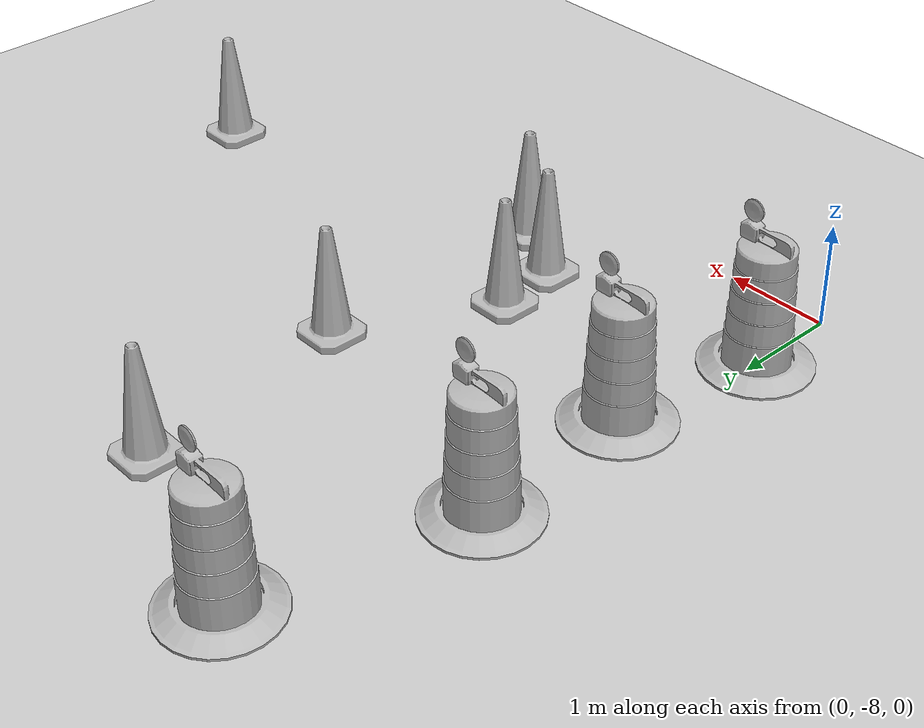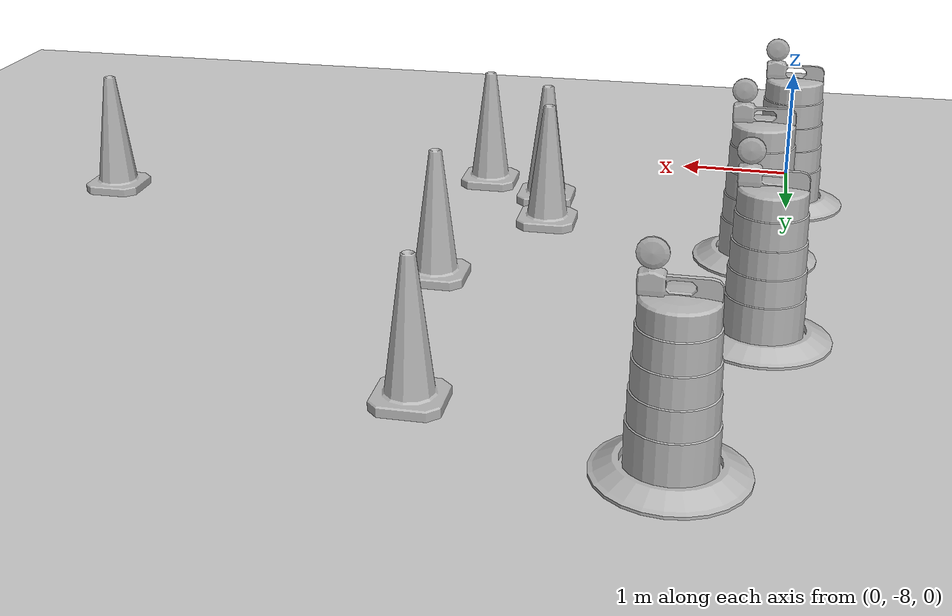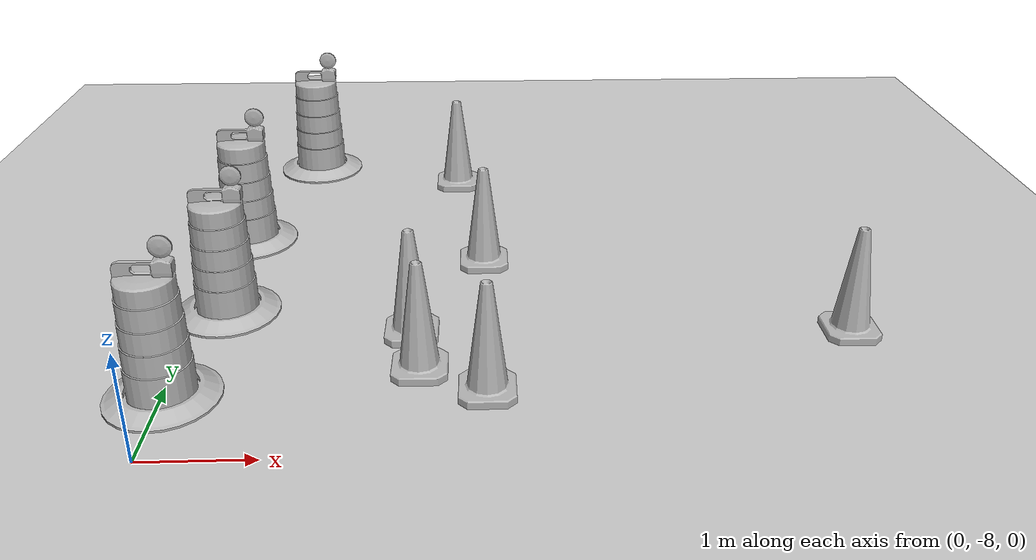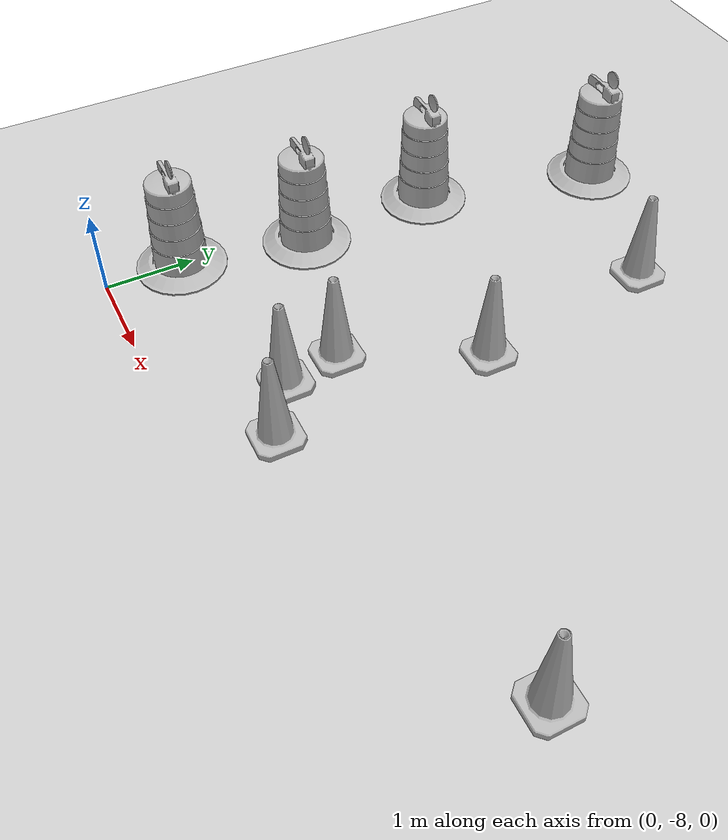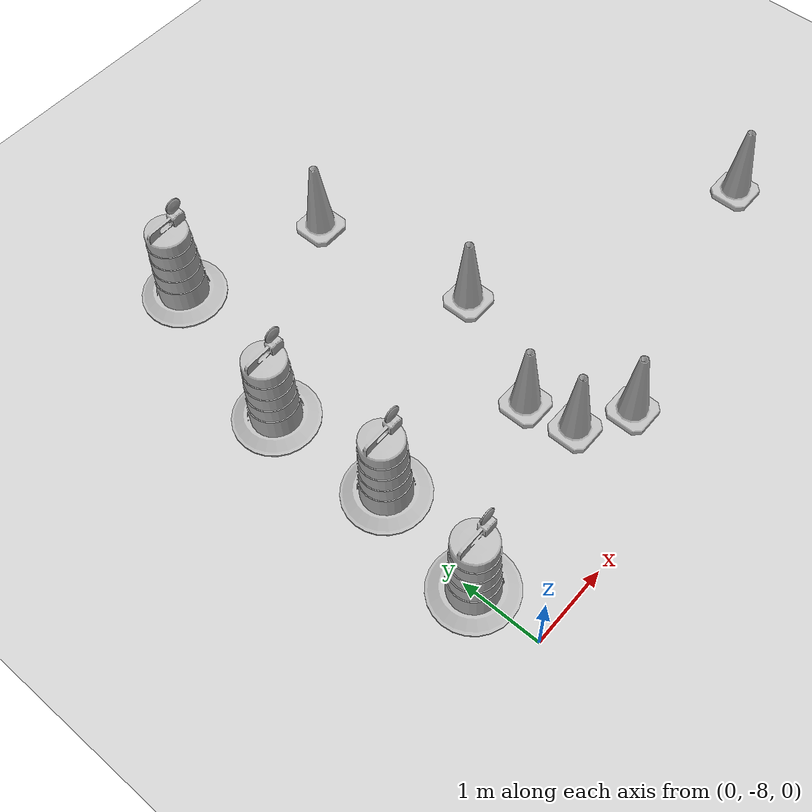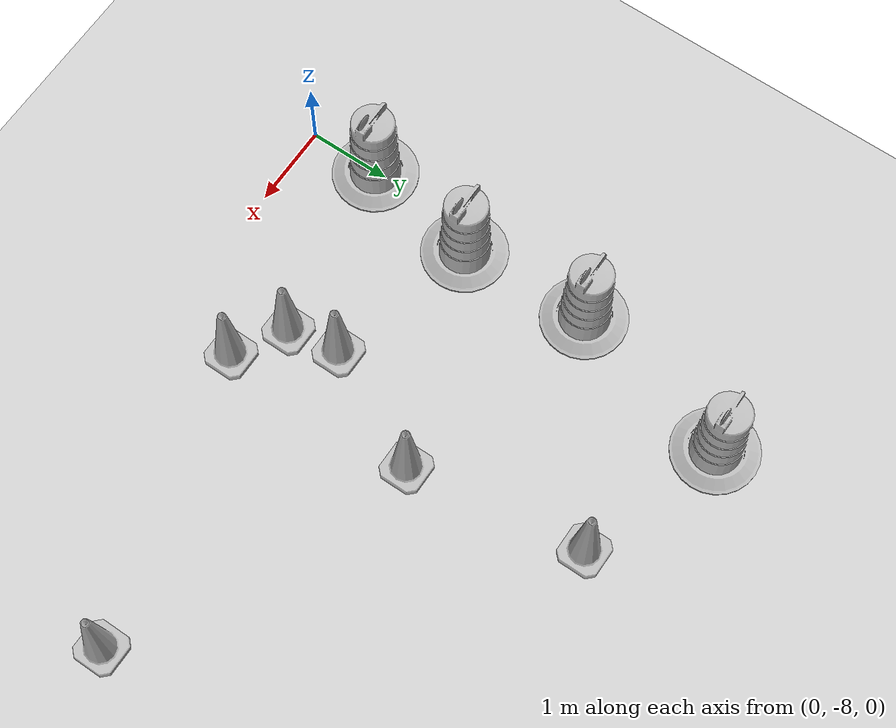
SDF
<sdf version="1.7">
 <world name="default">
  <light name="sun" type="directional">
   <pose>0 0 10 0 -0 0</pose>
   <diffuse>0.8 0.8 0.8 1</diffuse>
   <specular>0.2 0.2 0.2 1</specular>
   <attenuation>
    <range>1000</range>
    <constant>0.9</constant>
    <linear>0.01</linear>
    <quadratic>0.001</quadratic>
   </attenuation>
   <direction>-0.5 0.1 -0.9</direction>
   <spot><inner_angle>0</inner_angle><outer_angle>0</outer_angle><falloff>0</falloff></spot>
  </light>
  <model name="ground_plane">
   <static>1</static>
   <link name="link">
    <collision name="collision">
     <geometry><plane><normal>0 0 1</normal><size>100 100</size></plane></geometry>
     <surface>
      <contact><collide_bitmask>65535</collide_bitmask></contact>
      <friction><ode><mu>100</mu><mu2>50</mu2></ode></friction>
     </surface>
    </collision>
    <visual name="visual">
     <cast_shadows>0</cast_shadows>
     <geometry><plane><normal>0 0 1</normal><size>100 100</size></plane></geometry>
     <material>
      <script><uri>file://media/materials/scripts/gazebo.material</uri><name>Gazebo/Grey</name></script>
     </material>
    </visual>
   </link>
  </model>
  <gravity>0 0 -9.8</gravity>
  <magnetic_field>6e-06 2.3e-05 -4.2e-05</magnetic_field>
  <atmosphere type="adiabatic"/>
  <physics type="ode">
   <max_step_size>0.001</max_step_size>
   <real_time_factor>1</real_time_factor>
   <real_time_update_rate>1000</real_time_update_rate>
  </physics>
  <scene><ambient>0.4 0.4 0.4 1</ambient><background>0.7 0.7 0.7 1</background><shadows>1</shadows></scene>
  <audio><device>default</device></audio>
  <spherical_coordinates>
   <surface_model>EARTH_WGS84</surface_model>
   <latitude_deg>0</latitude_deg>
   <longitude_deg>0</longitude_deg>
   <elevation>0</elevation>
   <heading_deg>0</heading_deg>
  </spherical_coordinates>
  <model name="Construction Barrel">
   <link name="link">
    <inertial>
     <pose>0 0 0.4 0 -0 0</pose>
     <mass>500</mass>
     <inertia><ixx>51.2096</ixx><iyy>51.2096</iyy><izz>25</izz><ixy>0</ixy><ixz>0</ixz><iyz>0</iyz></inertia>
    </inertial>
    <collision name="collision">
     <geometry><mesh><uri>model://construction_barrel/meshes/construction_barrel.dae</uri></mesh></geometry>
    </collision>
    <visual name="visual">
     <geometry><mesh><uri>model://construction_barrel/meshes/construction_barrel.dae</uri></mesh></geometry>
    </visual>
   </link>
   <pose>0.703286 -2.08719 1e-06 4e-06 2e-06 -1.9e-05</pose>
  </model>
  <model name="Construction Cone">
   <link name="link">
    <collision name="collision">
     <geometry>
      <mesh><scale>10 10 10</scale><uri>model://construction_cone/meshes/construction_cone.dae</uri></mesh>
     </geometry>
    </collision>
    <visual name="visual">
     <geometry>
      <mesh><scale>10 10 10</scale><uri>model://construction_cone/meshes/construction_cone.dae</uri></mesh>
     </geometry>
    </visual>
    <inertial>
     <inertia><ixx>1</ixx><ixy>0</ixy><ixz>0</ixz><iyy>1</iyy><iyz>0</iyz><izz>1</izz></inertia>
     <mass>1</mass>
    </inertial>
   </link>
   <pose>2.47992 -2.6482 -1e-06 2e-06 2e-06 0</pose>
  </model>
  <model name="Construction Barrel_0">
   <link name="link">
    <inertial>
     <pose>0 0 0.4 0 -0 0</pose>
     <mass>500</mass>
     <inertia><ixx>51.2096</ixx><iyy>51.2096</iyy><izz>25</izz><ixy>0</ixy><ixz>0</ixz><iyz>0</iyz></inertia>
    </inertial>
    <collision name="collision">
     <geometry><mesh><uri>model://construction_barrel/meshes/construction_barrel.dae</uri></mesh></geometry>
    </collision>
    <visual name="visual">
     <geometry><mesh><uri>model://construction_barrel/meshes/construction_barrel.dae</uri></mesh></geometry>
    </visual>
   </link>
   <pose>0.183923 -4.13261 -1e-06 -3e-06 -1e-06 -1.5e-05</pose>
  </model>
  <model name="Construction Cone_0">
   <link name="link">
    <collision name="collision">
     <geometry>
      <mesh><scale>10 10 10</scale><uri>model://construction_cone/meshes/construction_cone.dae</uri></mesh>
     </geometry>
    </collision>
    <visual name="visual">
     <geometry>
      <mesh><scale>10 10 10</scale><uri>model://construction_cone/meshes/construction_cone.dae</uri></mesh>
     </geometry>
    </visual>
    <inertial>
     <inertia><ixx>1</ixx><ixy>0</ixy><ixz>0</ixz><iyy>1</iyy><iyz>0</iyz><izz>1</izz></inertia>
     <mass>1</mass>
    </inertial>
   </link>
   <pose>2.78782 -4.75966 -0 0 -0 0</pose>
  </model>
  <model name="Construction Barrel_1">
   <link name="link">
    <inertial>
     <pose>0 0 0.4 0 -0 0</pose>
     <mass>500</mass>
     <inertia><ixx>51.2096</ixx><iyy>51.2096</iyy><izz>25</izz><ixy>0</ixy><ixz>0</ixz><iyz>0</iyz></inertia>
    </inertial>
    <collision name="collision">
     <geometry><mesh><uri>model://construction_barrel/meshes/construction_barrel.dae</uri></mesh></geometry>
    </collision>
    <visual name="visual">
     <geometry><mesh><uri>model://construction_barrel/meshes/construction_barrel.dae</uri></mesh></geometry>
    </visual>
   </link>
   <pose>0.26754 -5.7047 -2e-06 -8e-06 -2e-06 -1.3e-05</pose>
  </model>
  <model name="Construction Cone_1">
   <link name="link">
    <collision name="collision">
     <geometry>
      <mesh><scale>10 10 10</scale><uri>model://construction_cone/meshes/construction_cone.dae</uri></mesh>
     </geometry>
    </collision>
    <visual name="visual">
     <geometry>
      <mesh><scale>10 10 10</scale><uri>model://construction_cone/meshes/construction_cone.dae</uri></mesh>
     </geometry>
    </visual>
    <inertial>
     <inertia><ixx>1</ixx><ixy>0</ixy><ixz>0</ixz><iyy>1</iyy><iyz>0</iyz><izz>1</izz></inertia>
     <mass>1</mass>
    </inertial>
   </link>
   <pose>2.09512 -6.16796 -1e-05 0 -0 0</pose>
  </model>
  <model name="Construction Cone_2">
   <link name="link">
    <collision name="collision">
     <geometry>
      <mesh><scale>10 10 10</scale><uri>model://construction_cone/meshes/construction_cone.dae</uri></mesh>
     </geometry>
    </collision>
    <visual name="visual">
     <geometry>
      <mesh><scale>10 10 10</scale><uri>model://construction_cone/meshes/construction_cone.dae</uri></mesh>
     </geometry>
    </visual>
    <inertial>
     <inertia><ixx>1</ixx><ixy>0</ixy><ixz>0</ixz><iyy>1</iyy><iyz>0</iyz><izz>1</izz></inertia>
     <mass>1</mass>
    </inertial>
   </link>
   <pose>2.20012 -6.7856 -0 0 -0 0</pose>
  </model>
  <model name="Construction Barrel_2">
   <link name="link">
    <inertial>
     <pose>0 0 0.4 0 -0 0</pose>
     <mass>500</mass>
     <inertia><ixx>51.2096</ixx><iyy>51.2096</iyy><izz>25</izz><ixy>0</ixy><ixz>0</ixz><iyz>0</iyz></inertia>
    </inertial>
    <collision name="collision">
     <geometry><mesh><uri>model://construction_barrel/meshes/construction_barrel.dae</uri></mesh></geometry>
    </collision>
    <visual name="visual">
     <geometry><mesh><uri>model://construction_barrel/meshes/construction_barrel.dae</uri></mesh></geometry>
    </visual>
   </link>
   <pose>0.01333 -7.1299 -3e-06 -7e-06 -1.2e-05 -8e-06</pose>
  </model>
  <model name="Construction Cone_3">
   <link name="link">
    <collision name="collision">
     <geometry>
      <mesh><scale>10 10 10</scale><uri>model://construction_cone/meshes/construction_cone.dae</uri></mesh>
     </geometry>
    </collision>
    <visual name="visual">
     <geometry>
      <mesh><scale>10 10 10</scale><uri>model://construction_cone/meshes/construction_cone.dae</uri></mesh>
     </geometry>
    </visual>
    <inertial>
     <inertia><ixx>1</ixx><ixy>0</ixy><ixz>0</ixz><iyy>1</iyy><iyz>0</iyz><izz>1</izz></inertia>
     <mass>1</mass>
    </inertial>
   </link>
   <pose>2.80053 -7.14135 -1e-05 0 -0 0</pose>
  </model>
  <model name="Construction Cone_4">
   <link name="link">
    <collision name="collision">
     <geometry>
      <mesh><scale>10 10 10</scale><uri>model://construction_cone/meshes/construction_cone.dae</uri></mesh>
     </geometry>
    </collision>
    <visual name="visual">
     <geometry>
      <mesh><scale>10 10 10</scale><uri>model://construction_cone/meshes/construction_cone.dae</uri></mesh>
     </geometry>
    </visual>
    <inertial>
     <inertia><ixx>1</ixx><ixy>0</ixy><ixz>0</ixz><iyy>1</iyy><iyz>0</iyz><izz>1</izz></inertia>
     <mass>1</mass>
    </inertial>
   </link>
   <pose>6.25317 -6.25617 -0 0 -0 0</pose>
  </model>
 </world>
</sdf>
